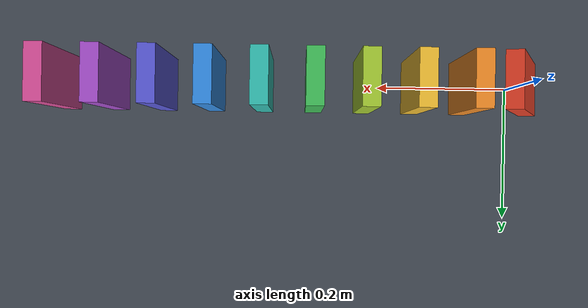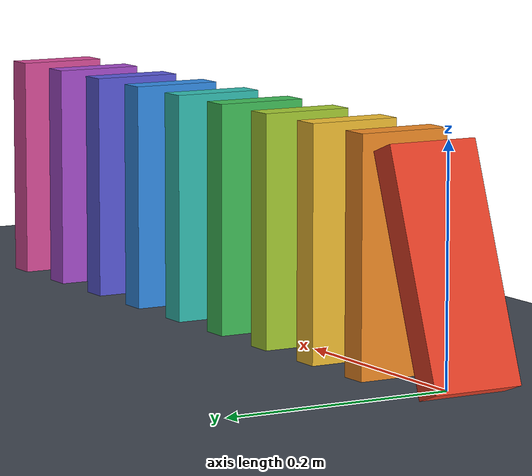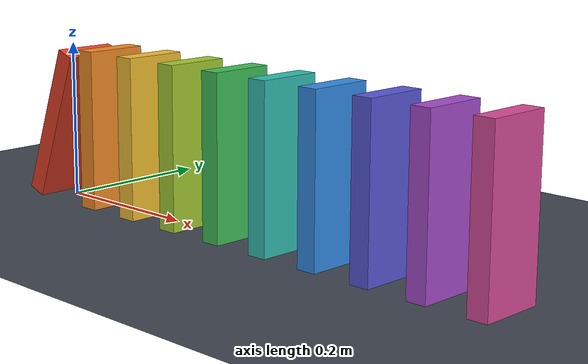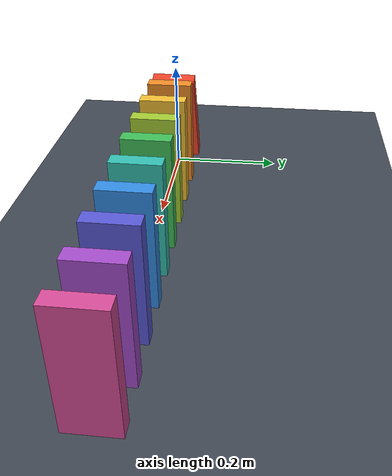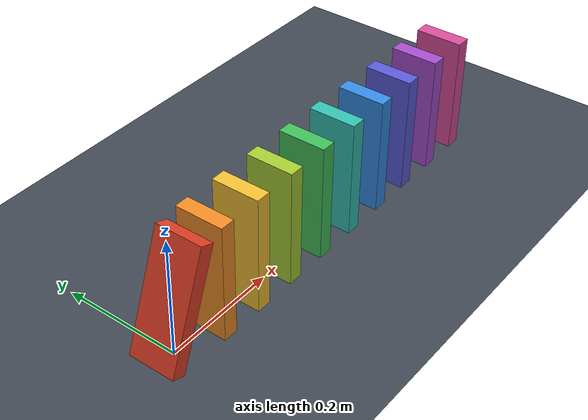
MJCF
<mujoco model="ten_domino_chain">
  <compiler angle="degree"/>
  <option timestep="0.002" gravity="0 0 -9.81" integrator="implicitfast" solver="Newton" iterations="100"/>
  <size nconmax="200" njmax="1000"/>

  <worldbody>
    <light name="overhead" pos="0.35 -0.5 1.5" dir="0 0 -1"/>
    <camera name="overview" pos="0.35 -1.2 0.65" xyaxes="1 0 0 0 0.45 0.893"/>
    <geom name="floor" type="plane" pos="0 0 0" size="2 1 0.1" friction="0.9 0.005 0.0001" solref="0.008 1" solimp="0.95 0.99 0.001" rgba="0.25 0.28 0.32 1"/>

    <!-- The first domino begins tilted 20 degrees toward the others, beyond its tipping point. -->
    <body name="domino1" pos="0 0 0.098244514" quat="0.984807753 0 0.173648178 0">
      <freejoint name="domino1_free"/>
      <geom name="domino1_geom" type="box" size="0.0125 0.04 0.1" density="600" friction="0.9 0.005 0.0001" solref="0.008 1" solimp="0.95 0.99 0.001" rgba="0.9 0.25 0.15 1"/>
    </body>

    <body name="domino2" pos="0.075 0 0.1">
      <freejoint name="domino2_free"/>
      <geom name="domino2_geom" type="box" size="0.0125 0.04 0.1" density="600" friction="0.9 0.005 0.0001" solref="0.008 1" solimp="0.95 0.99 0.001" rgba="0.95 0.55 0.15 1"/>
    </body>

    <body name="domino3" pos="0.15 0 0.1">
      <freejoint name="domino3_free"/>
      <geom name="domino3_geom" type="box" size="0.0125 0.04 0.1" density="600" friction="0.9 0.005 0.0001" solref="0.008 1" solimp="0.95 0.99 0.001" rgba="0.95 0.75 0.2 1"/>
    </body>

    <body name="domino4" pos="0.225 0 0.1">
      <freejoint name="domino4_free"/>
      <geom name="domino4_geom" type="box" size="0.0125 0.04 0.1" density="600" friction="0.9 0.005 0.0001" solref="0.008 1" solimp="0.95 0.99 0.001" rgba="0.65 0.8 0.2 1"/>
    </body>

    <body name="domino5" pos="0.3 0 0.1">
      <freejoint name="domino5_free"/>
      <geom name="domino5_geom" type="box" size="0.0125 0.04 0.1" density="600" friction="0.9 0.005 0.0001" solref="0.008 1" solimp="0.95 0.99 0.001" rgba="0.25 0.75 0.35 1"/>
    </body>

    <body name="domino6" pos="0.375 0 0.1">
      <freejoint name="domino6_free"/>
      <geom name="domino6_geom" type="box" size="0.0125 0.04 0.1" density="600" friction="0.9 0.005 0.0001" solref="0.008 1" solimp="0.95 0.99 0.001" rgba="0.2 0.75 0.7 1"/>
    </body>

    <body name="domino7" pos="0.45 0 0.1">
      <freejoint name="domino7_free"/>
      <geom name="domino7_geom" type="box" size="0.0125 0.04 0.1" density="600" friction="0.9 0.005 0.0001" solref="0.008 1" solimp="0.95 0.99 0.001" rgba="0.2 0.55 0.9 1"/>
    </body>

    <body name="domino8" pos="0.525 0 0.1">
      <freejoint name="domino8_free"/>
      <geom name="domino8_geom" type="box" size="0.0125 0.04 0.1" density="600" friction="0.9 0.005 0.0001" solref="0.008 1" solimp="0.95 0.99 0.001" rgba="0.35 0.35 0.85 1"/>
    </body>

    <body name="domino9" pos="0.6 0 0.1">
      <freejoint name="domino9_free"/>
      <geom name="domino9_geom" type="box" size="0.0125 0.04 0.1" density="600" friction="0.9 0.005 0.0001" solref="0.008 1" solimp="0.95 0.99 0.001" rgba="0.65 0.3 0.8 1"/>
    </body>

    <body name="domino10" pos="0.675 0 0.1">
      <freejoint name="domino10_free"/>
      <geom name="domino10_geom" type="box" size="0.0125 0.04 0.1" density="600" friction="0.9 0.005 0.0001" solref="0.008 1" solimp="0.95 0.99 0.001" rgba="0.85 0.3 0.6 1"/>
    </body>
  </worldbody>

  <keyframe>
    <key name="start"/>
  </keyframe>
</mujoco>
